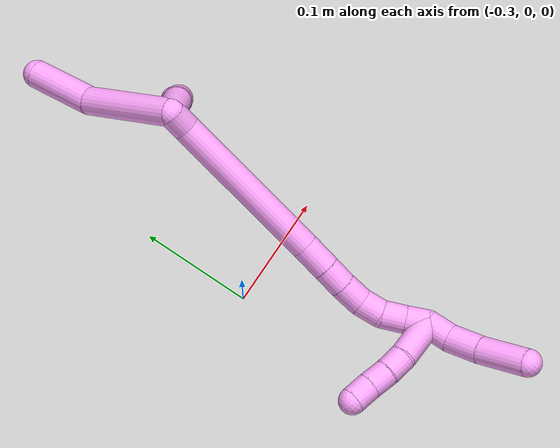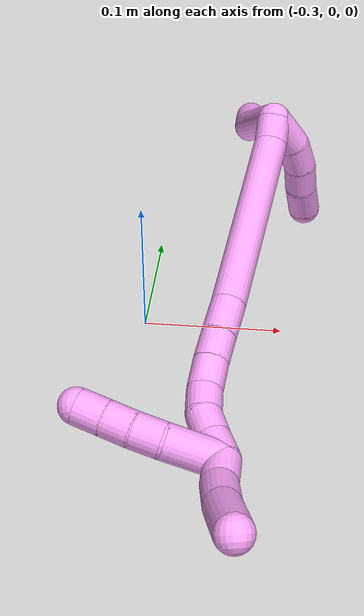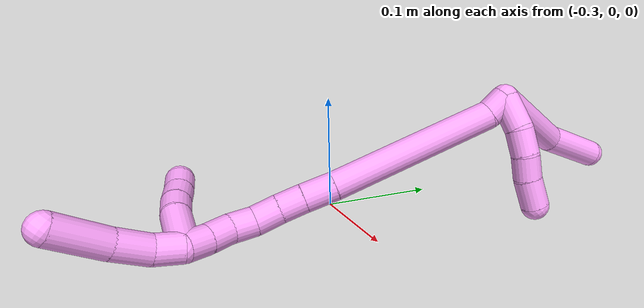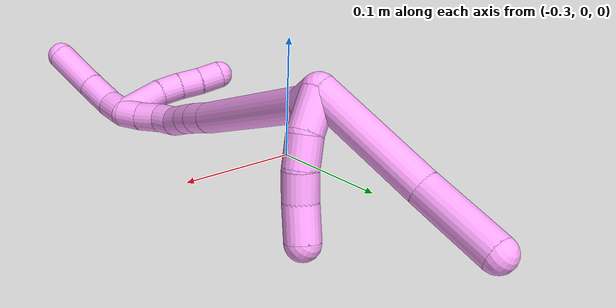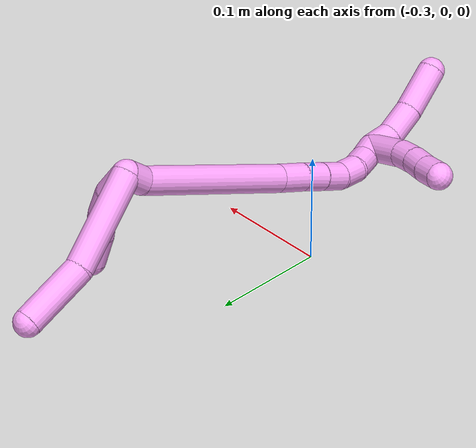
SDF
<sdf version="1.7">
 <world name="default">
  <model name="4">
   <static>0</static>
   <link name="4">
    <collision name="collision-cylinder-e_1_2_8">
     <pose>-0.010547 0.042479 0.009143 -1.35879 -0.238123 0.192638</pose>
     <geometry><cylinder><radius>0.0125</radius><length>0.089428</length></cylinder></geometry>
     <surface>
      <friction><ode><mu>1.16</mu><mu2>1.16</mu2><slip1>0</slip1><slip2>0</slip2></ode></friction>
      <contact><ode><kp>1e+06</kp><kd>1</kd><max_vel>0</max_vel><min_depth>0.001</min_depth></ode></contact>
     </surface>
    </collision>
    <visual name="visual-cylinder-e_1_2_8">
     <pose>-0.010547 0.042479 0.009143 -1.35879 -0.238123 0.192638</pose>
     <geometry><cylinder><radius>0.0125</radius><length>0.089428</length></cylinder></geometry>
     <material><ambient>1 0.65098 0.996078 1</ambient></material>
    </visual>
    <collision name="collision-cylinder-e_2_8_6">
     <pose>-0.021162 0.113003 0.029721 -1.18366 -0.002228 0.001498</pose>
     <geometry><cylinder><radius>0.0125</radius><length>0.060572</length></cylinder></geometry>
     <surface>
      <friction><ode><mu>1.16</mu><mu2>1.16</mu2><slip1>0</slip1><slip2>0</slip2></ode></friction>
      <contact><ode><kp>1e+06</kp><kd>1</kd><max_vel>0</max_vel><min_depth>0.001</min_depth></ode></contact>
     </surface>
    </collision>
    <visual name="visual-cylinder-e_2_8_6">
     <pose>-0.021162 0.113003 0.029721 -1.18366 -0.002228 0.001498</pose>
     <geometry><cylinder><radius>0.0125</radius><length>0.060572</length></cylinder></geometry>
     <material><ambient>1 0.65098 0.996078 1</ambient></material>
    </visual>
    <collision name="collision-cylinder-e_1_2_9">
     <pose>0.006733 0.010503 -0.007835 -2.21176 0.474653 -0.898674</pose>
     <geometry><cylinder><radius>0.0125</radius><length>0.029464</length></cylinder></geometry>
     <surface>
      <friction><ode><mu>1.16</mu><mu2>1.16</mu2><slip1>0</slip1><slip2>0</slip2></ode></friction>
      <contact><ode><kp>1e+06</kp><kd>1</kd><max_vel>0</max_vel><min_depth>0.001</min_depth></ode></contact>
     </surface>
    </collision>
    <visual name="visual-cylinder-e_1_2_9">
     <pose>0.006733 0.010503 -0.007835 -2.21176 0.474653 -0.898674</pose>
     <geometry><cylinder><radius>0.0125</radius><length>0.029464</length></cylinder></geometry>
     <material><ambient>1 0.65098 0.996078 1</ambient></material>
    </visual>
    <collision name="collision-cylinder-e_2_9_10">
     <pose>0.015504 0.029865 -0.022666 -2.23909 0.178663 -0.36554</pose>
     <geometry><cylinder><radius>0.0125</radius><length>0.022942</length></cylinder></geometry>
     <surface>
      <friction><ode><mu>1.16</mu><mu2>1.16</mu2><slip1>0</slip1><slip2>0</slip2></ode></friction>
      <contact><ode><kp>1e+06</kp><kd>1</kd><max_vel>0</max_vel><min_depth>0.001</min_depth></ode></contact>
     </surface>
    </collision>
    <visual name="visual-cylinder-e_2_9_10">
     <pose>0.015504 0.029865 -0.022666 -2.23909 0.178663 -0.36554</pose>
     <geometry><cylinder><radius>0.0125</radius><length>0.022942</length></cylinder></geometry>
     <material><ambient>1 0.65098 0.996078 1</ambient></material>
    </visual>
    <collision name="collision-cylinder-e_3_10_11">
     <pose>0.017402 0.046996 -0.036306 -2.24771 -0.013246 0.027635</pose>
     <geometry><cylinder><radius>0.0125</radius><length>0.02122</length></cylinder></geometry>
     <surface>
      <friction><ode><mu>1.16</mu><mu2>1.16</mu2><slip1>0</slip1><slip2>0</slip2></ode></friction>
      <contact><ode><kp>1e+06</kp><kd>1</kd><max_vel>0</max_vel><min_depth>0.001</min_depth></ode></contact>
     </surface>
    </collision>
    <visual name="visual-cylinder-e_3_10_11">
     <pose>0.017402 0.046996 -0.036306 -2.24771 -0.013246 0.027635</pose>
     <geometry><cylinder><radius>0.0125</radius><length>0.02122</length></cylinder></geometry>
     <material><ambient>1 0.65098 0.996078 1</ambient></material>
    </visual>
    <collision name="collision-cylinder-e_4_11_5">
     <pose>0.017984 0.066585 -0.049677 -2.10687 0.054815 -0.096274</pose>
     <geometry><cylinder><radius>0.0125</radius><length>0.026374</length></cylinder></geometry>
     <surface>
      <friction><ode><mu>1.16</mu><mu2>1.16</mu2><slip1>0</slip1><slip2>0</slip2></ode></friction>
      <contact><ode><kp>1e+06</kp><kd>1</kd><max_vel>0</max_vel><min_depth>0.001</min_depth></ode></contact>
     </surface>
    </collision>
    <visual name="visual-cylinder-e_4_11_5">
     <pose>0.017984 0.066585 -0.049677 -2.10687 0.054815 -0.096274</pose>
     <geometry><cylinder><radius>0.0125</radius><length>0.026374</length></cylinder></geometry>
     <material><ambient>1 0.65098 0.996078 1</ambient></material>
    </visual>
    <collision name="collision-cylinder-e_1_2_12">
     <pose>-0.002005 -0.001072 -0.009877 3.03344 -0.199159 -2.14856</pose>
     <geometry><cylinder><radius>0.0125</radius><length>0.020271</length></cylinder></geometry>
     <surface>
      <friction><ode><mu>1.16</mu><mu2>1.16</mu2><slip1>0</slip1><slip2>0</slip2></ode></friction>
      <contact><ode><kp>1e+06</kp><kd>1</kd><max_vel>0</max_vel><min_depth>0.001</min_depth></ode></contact>
     </surface>
    </collision>
    <visual name="visual-cylinder-e_1_2_12">
     <pose>-0.002005 -0.001072 -0.009877 3.03344 -0.199159 -2.14856</pose>
     <geometry><cylinder><radius>0.0125</radius><length>0.020271</length></cylinder></geometry>
     <material><ambient>1 0.65098 0.996078 1</ambient></material>
    </visual>
    <collision name="collision-cylinder-e_2_12_13">
     <pose>-0.022458 -0.033554 -0.083421 2.68329 -0.254225 -1.00249</pose>
     <geometry><cylinder><radius>0.0125</radius><length>0.1467</length></cylinder></geometry>
     <surface>
      <friction><ode><mu>1.16</mu><mu2>1.16</mu2><slip1>0</slip1><slip2>0</slip2></ode></friction>
      <contact><ode><kp>1e+06</kp><kd>1</kd><max_vel>0</max_vel><min_depth>0.001</min_depth></ode></contact>
     </surface>
    </collision>
    <visual name="visual-cylinder-e_2_12_13">
     <pose>-0.022458 -0.033554 -0.083421 2.68329 -0.254225 -1.00249</pose>
     <geometry><cylinder><radius>0.0125</radius><length>0.1467</length></cylinder></geometry>
     <material><ambient>1 0.65098 0.996078 1</ambient></material>
    </visual>
    <collision name="collision-cylinder-e_3_13_14">
     <pose>-0.044604 -0.071267 -0.158394 2.63299 -0.278345 -0.988575</pose>
     <geometry><cylinder><radius>0.0125</radius><length>0.026928</length></cylinder></geometry>
     <surface>
      <friction><ode><mu>1.16</mu><mu2>1.16</mu2><slip1>0</slip1><slip2>0</slip2></ode></friction>
      <contact><ode><kp>1e+06</kp><kd>1</kd><max_vel>0</max_vel><min_depth>0.001</min_depth></ode></contact>
     </surface>
    </collision>
    <visual name="visual-cylinder-e_3_13_14">
     <pose>-0.044604 -0.071267 -0.158394 2.63299 -0.278345 -0.988575</pose>
     <geometry><cylinder><radius>0.0125</radius><length>0.026928</length></cylinder></geometry>
     <material><ambient>1 0.65098 0.996078 1</ambient></material>
    </visual>
    <collision name="collision-cylinder-e_4_14_15">
     <pose>-0.051195 -0.082257 -0.178837 2.66762 -0.274507 -1.03896</pose>
     <geometry><cylinder><radius>0.0125</radius><length>0.021335</length></cylinder></geometry>
     <surface>
      <friction><ode><mu>1.16</mu><mu2>1.16</mu2><slip1>0</slip1><slip2>0</slip2></ode></friction>
      <contact><ode><kp>1e+06</kp><kd>1</kd><max_vel>0</max_vel><min_depth>0.001</min_depth></ode></contact>
     </surface>
    </collision>
    <visual name="visual-cylinder-e_4_14_15">
     <pose>-0.051195 -0.082257 -0.178837 2.66762 -0.274507 -1.03896</pose>
     <geometry><cylinder><radius>0.0125</radius><length>0.021335</length></cylinder></geometry>
     <material><ambient>1 0.65098 0.996078 1</ambient></material>
    </visual>
    <collision name="collision-cylinder-e_5_15_16">
     <pose>-0.056475 -0.091663 -0.197784 2.69326 -0.215918 -0.887483</pose>
     <geometry><cylinder><radius>0.0125</radius><length>0.022291</length></cylinder></geometry>
     <surface>
      <friction><ode><mu>1.16</mu><mu2>1.16</mu2><slip1>0</slip1><slip2>0</slip2></ode></friction>
      <contact><ode><kp>1e+06</kp><kd>1</kd><max_vel>0</max_vel><min_depth>0.001</min_depth></ode></contact>
     </surface>
    </collision>
    <visual name="visual-cylinder-e_5_15_16">
     <pose>-0.056475 -0.091663 -0.197784 2.69326 -0.215918 -0.887483</pose>
     <geometry><cylinder><radius>0.0125</radius><length>0.022291</length></cylinder></geometry>
     <material><ambient>1 0.65098 0.996078 1</ambient></material>
    </visual>
    <collision name="collision-cylinder-e_6_16_17">
     <pose>-0.059195 -0.102937 -0.215665 2.4594 -0.031939 -0.089923</pose>
     <geometry><cylinder><radius>0.0125</radius><length>0.020805</length></cylinder></geometry>
     <surface>
      <friction><ode><mu>1.16</mu><mu2>1.16</mu2><slip1>0</slip1><slip2>0</slip2></ode></friction>
      <contact><ode><kp>1e+06</kp><kd>1</kd><max_vel>0</max_vel><min_depth>0.001</min_depth></ode></contact>
     </surface>
    </collision>
    <visual name="visual-cylinder-e_6_16_17">
     <pose>-0.059195 -0.102937 -0.215665 2.4594 -0.031939 -0.089923</pose>
     <geometry><cylinder><radius>0.0125</radius><length>0.020805</length></cylinder></geometry>
     <material><ambient>1 0.65098 0.996078 1</ambient></material>
    </visual>
    <collision name="collision-cylinder-e_7_17_18">
     <pose>-0.056542 -0.115781 -0.231871 2.48353 0.282532 0.78931</pose>
     <geometry><cylinder><radius>0.0125</radius><length>0.021414</length></cylinder></geometry>
     <surface>
      <friction><ode><mu>1.16</mu><mu2>1.16</mu2><slip1>0</slip1><slip2>0</slip2></ode></friction>
      <contact><ode><kp>1e+06</kp><kd>1</kd><max_vel>0</max_vel><min_depth>0.001</min_depth></ode></contact>
     </surface>
    </collision>
    <visual name="visual-cylinder-e_7_17_18">
     <pose>-0.056542 -0.115781 -0.231871 2.48353 0.282532 0.78931</pose>
     <geometry><cylinder><radius>0.0125</radius><length>0.021414</length></cylinder></geometry>
     <material><ambient>1 0.65098 0.996078 1</ambient></material>
    </visual>
    <collision name="collision-cylinder-e_8_18_1">
     <pose>-0.050434 -0.128757 -0.246942 2.37449 0.313504 0.746589</pose>
     <geometry><cylinder><radius>0.0125</radius><length>0.020257</length></cylinder></geometry>
     <surface>
      <friction><ode><mu>1.16</mu><mu2>1.16</mu2><slip1>0</slip1><slip2>0</slip2></ode></friction>
      <contact><ode><kp>1e+06</kp><kd>1</kd><max_vel>0</max_vel><min_depth>0.001</min_depth></ode></contact>
     </surface>
    </collision>
    <visual name="visual-cylinder-e_8_18_1">
     <pose>-0.050434 -0.128757 -0.246942 2.37449 0.313504 0.746589</pose>
     <geometry><cylinder><radius>0.0125</radius><length>0.020257</length></cylinder></geometry>
     <material><ambient>1 0.65098 0.996078 1</ambient></material>
    </visual>
    <collision name="collision-cylinder-e_1_1_19">
     <pose>-0.048177 -0.144577 -0.260949 2.22954 -0.074947 -0.152569</pose>
     <geometry><cylinder><radius>0.0125</radius><length>0.023167</length></cylinder></geometry>
     <surface>
      <friction><ode><mu>1.16</mu><mu2>1.16</mu2><slip1>0</slip1><slip2>0</slip2></ode></friction>
      <contact><ode><kp>1e+06</kp><kd>1</kd><max_vel>0</max_vel><min_depth>0.001</min_depth></ode></contact>
     </surface>
    </collision>
    <visual name="visual-cylinder-e_1_1_19">
     <pose>-0.048177 -0.144577 -0.260949 2.22954 -0.074947 -0.152569</pose>
     <geometry><cylinder><radius>0.0125</radius><length>0.023167</length></cylinder></geometry>
     <material><ambient>1 0.65098 0.996078 1</ambient></material>
    </visual>
    <collision name="collision-cylinder-e_2_19_20">
     <pose>-0.047426 -0.167853 -0.273739 1.95515 0.10574 0.156655</pose>
     <geometry><cylinder><radius>0.0125</radius><length>0.03068</length></cylinder></geometry>
     <surface>
      <friction><ode><mu>1.16</mu><mu2>1.16</mu2><slip1>0</slip1><slip2>0</slip2></ode></friction>
      <contact><ode><kp>1e+06</kp><kd>1</kd><max_vel>0</max_vel><min_depth>0.001</min_depth></ode></contact>
     </surface>
    </collision>
    <visual name="visual-cylinder-e_2_19_20">
     <pose>-0.047426 -0.167853 -0.273739 1.95515 0.10574 0.156655</pose>
     <geometry><cylinder><radius>0.0125</radius><length>0.03068</length></cylinder></geometry>
     <material><ambient>1 0.65098 0.996078 1</ambient></material>
    </visual>
    <collision name="collision-cylinder-e_3_20_4">
     <pose>-0.041552 -0.203759 -0.285839 1.85595 0.185437 0.247047</pose>
     <geometry><cylinder><radius>0.0125</radius><length>0.046153</length></cylinder></geometry>
     <surface>
      <friction><ode><mu>1.16</mu><mu2>1.16</mu2><slip1>0</slip1><slip2>0</slip2></ode></friction>
      <contact><ode><kp>1e+06</kp><kd>1</kd><max_vel>0</max_vel><min_depth>0.001</min_depth></ode></contact>
     </surface>
    </collision>
    <visual name="visual-cylinder-e_3_20_4">
     <pose>-0.041552 -0.203759 -0.285839 1.85595 0.185437 0.247047</pose>
     <geometry><cylinder><radius>0.0125</radius><length>0.046153</length></cylinder></geometry>
     <material><ambient>1 0.65098 0.996078 1</ambient></material>
    </visual>
    <collision name="collision-cylinder-e_1_1_21">
     <pose>-0.065428 -0.139294 -0.246438 0.477522 -1.1377 -0.308763</pose>
     <geometry><cylinder><radius>0.0125</radius><length>0.039923</length></cylinder></geometry>
     <surface>
      <friction><ode><mu>1.16</mu><mu2>1.16</mu2><slip1>0</slip1><slip2>0</slip2></ode></friction>
      <contact><ode><kp>1e+06</kp><kd>1</kd><max_vel>0</max_vel><min_depth>0.001</min_depth></ode></contact>
     </surface>
    </collision>
    <visual name="visual-cylinder-e_1_1_21">
     <pose>-0.065428 -0.139294 -0.246438 0.477522 -1.1377 -0.308763</pose>
     <geometry><cylinder><radius>0.0125</radius><length>0.039923</length></cylinder></geometry>
     <material><ambient>1 0.65098 0.996078 1</ambient></material>
    </visual>
    <collision name="collision-cylinder-e_2_21_22">
     <pose>-0.092734 -0.143195 -0.235 0.012883 -1.16035 -0.008444</pose>
     <geometry><cylinder><radius>0.0125</radius><length>0.020039</length></cylinder></geometry>
     <surface>
      <friction><ode><mu>1.16</mu><mu2>1.16</mu2><slip1>0</slip1><slip2>0</slip2></ode></friction>
      <contact><ode><kp>1e+06</kp><kd>1</kd><max_vel>0</max_vel><min_depth>0.001</min_depth></ode></contact>
     </surface>
    </collision>
    <visual name="visual-cylinder-e_2_21_22">
     <pose>-0.092734 -0.143195 -0.235 0.012883 -1.16035 -0.008444</pose>
     <geometry><cylinder><radius>0.0125</radius><length>0.020039</length></cylinder></geometry>
     <material><ambient>1 0.65098 0.996078 1</ambient></material>
    </visual>
    <collision name="collision-cylinder-e_3_22_23">
     <pose>-0.11089 -0.142236 -0.226686 -0.229946 -1.1117 0.143227</pose>
     <geometry><cylinder><radius>0.0125</radius><length>0.020008</length></cylinder></geometry>
     <surface>
      <friction><ode><mu>1.16</mu><mu2>1.16</mu2><slip1>0</slip1><slip2>0</slip2></ode></friction>
      <contact><ode><kp>1e+06</kp><kd>1</kd><max_vel>0</max_vel><min_depth>0.001</min_depth></ode></contact>
     </surface>
    </collision>
    <visual name="visual-cylinder-e_3_22_23">
     <pose>-0.11089 -0.142236 -0.226686 -0.229946 -1.1117 0.143227</pose>
     <geometry><cylinder><radius>0.0125</radius><length>0.020008</length></cylinder></geometry>
     <material><ambient>1 0.65098 0.996078 1</ambient></material>
    </visual>
    <collision name="collision-cylinder-e_4_23_3">
     <pose>-0.12886 -0.141087 -0.217982 -0.031592 -1.11708 0.019743</pose>
     <geometry><cylinder><radius>0.0125</radius><length>0.02003</length></cylinder></geometry>
     <surface>
      <friction><ode><mu>1.16</mu><mu2>1.16</mu2><slip1>0</slip1><slip2>0</slip2></ode></friction>
      <contact><ode><kp>1e+06</kp><kd>1</kd><max_vel>0</max_vel><min_depth>0.001</min_depth></ode></contact>
     </surface>
    </collision>
    <visual name="visual-cylinder-e_4_23_3">
     <pose>-0.12886 -0.141087 -0.217982 -0.031592 -1.11708 0.019743</pose>
     <geometry><cylinder><radius>0.0125</radius><length>0.02003</length></cylinder></geometry>
     <material><ambient>1 0.65098 0.996078 1</ambient></material>
    </visual>
    <collision name="collision-sphere-3">
     <pose>-0.137861 -0.140948 -0.213594 0 -0 0</pose>
     <geometry><sphere><radius>0.0125</radius></sphere></geometry>
     <surface>
      <friction><ode><mu>1.16</mu><mu2>1.16</mu2><slip1>0</slip1><slip2>0</slip2></ode></friction>
      <contact><ode><kp>1e+06</kp><kd>1</kd><max_vel>0</max_vel><min_depth>0.001</min_depth></ode></contact>
     </surface>
    </collision>
    <visual name="visual-sphere-3">
     <pose>-0.137861 -0.140948 -0.213594 0 -0 0</pose>
     <geometry><sphere><radius>0.0125</radius></sphere></geometry>
     <material><ambient>1 0.65098 0.996078 1</ambient></material>
    </visual>
    <collision name="collision-sphere-23">
     <pose>-0.119858 -0.141226 -0.222369 0 -0 0</pose>
     <geometry><sphere><radius>0.0125</radius></sphere></geometry>
     <surface>
      <friction><ode><mu>1.16</mu><mu2>1.16</mu2><slip1>0</slip1><slip2>0</slip2></ode></friction>
      <contact><ode><kp>1e+06</kp><kd>1</kd><max_vel>0</max_vel><min_depth>0.001</min_depth></ode></contact>
     </surface>
    </collision>
    <visual name="visual-sphere-23">
     <pose>-0.119858 -0.141226 -0.222369 0 -0 0</pose>
     <geometry><sphere><radius>0.0125</radius></sphere></geometry>
     <material><ambient>1 0.65098 0.996078 1</ambient></material>
    </visual>
    <collision name="collision-sphere-22">
     <pose>-0.101921 -0.143247 -0.231002 0 -0 0</pose>
     <geometry><sphere><radius>0.0125</radius></sphere></geometry>
     <surface>
      <friction><ode><mu>1.16</mu><mu2>1.16</mu2><slip1>0</slip1><slip2>0</slip2></ode></friction>
      <contact><ode><kp>1e+06</kp><kd>1</kd><max_vel>0</max_vel><min_depth>0.001</min_depth></ode></contact>
     </surface>
    </collision>
    <visual name="visual-sphere-22">
     <pose>-0.101921 -0.143247 -0.231002 0 -0 0</pose>
     <geometry><sphere><radius>0.0125</radius></sphere></geometry>
     <material><ambient>1 0.65098 0.996078 1</ambient></material>
    </visual>
    <collision name="collision-sphere-21">
     <pose>-0.083547 -0.143144 -0.238998 0 -0 0</pose>
     <geometry><sphere><radius>0.0125</radius></sphere></geometry>
     <surface>
      <friction><ode><mu>1.16</mu><mu2>1.16</mu2><slip1>0</slip1><slip2>0</slip2></ode></friction>
      <contact><ode><kp>1e+06</kp><kd>1</kd><max_vel>0</max_vel><min_depth>0.001</min_depth></ode></contact>
     </surface>
    </collision>
    <visual name="visual-sphere-21">
     <pose>-0.083547 -0.143144 -0.238998 0 -0 0</pose>
     <geometry><sphere><radius>0.0125</radius></sphere></geometry>
     <material><ambient>1 0.65098 0.996078 1</ambient></material>
    </visual>
    <collision name="collision-sphere-4">
     <pose>-0.037297 -0.225524 -0.292219 0 -0 0</pose>
     <geometry><sphere><radius>0.0125</radius></sphere></geometry>
     <surface>
      <friction><ode><mu>1.16</mu><mu2>1.16</mu2><slip1>0</slip1><slip2>0</slip2></ode></friction>
      <contact><ode><kp>1e+06</kp><kd>1</kd><max_vel>0</max_vel><min_depth>0.001</min_depth></ode></contact>
     </surface>
    </collision>
    <visual name="visual-sphere-4">
     <pose>-0.037297 -0.225524 -0.292219 0 -0 0</pose>
     <geometry><sphere><radius>0.0125</radius></sphere></geometry>
     <material><ambient>1 0.65098 0.996078 1</ambient></material>
    </visual>
    <collision name="collision-sphere-20">
     <pose>-0.045807 -0.181994 -0.279459 0 -0 0</pose>
     <geometry><sphere><radius>0.0125</radius></sphere></geometry>
     <surface>
      <friction><ode><mu>1.16</mu><mu2>1.16</mu2><slip1>0</slip1><slip2>0</slip2></ode></friction>
      <contact><ode><kp>1e+06</kp><kd>1</kd><max_vel>0</max_vel><min_depth>0.001</min_depth></ode></contact>
     </surface>
    </collision>
    <visual name="visual-sphere-20">
     <pose>-0.045807 -0.181994 -0.279459 0 -0 0</pose>
     <geometry><sphere><radius>0.0125</radius></sphere></geometry>
     <material><ambient>1 0.65098 0.996078 1</ambient></material>
    </visual>
    <collision name="collision-sphere-11">
     <pose>0.017262 0.055266 -0.042952 0 -0 0</pose>
     <geometry><sphere><radius>0.0125</radius></sphere></geometry>
     <surface>
      <friction><ode><mu>1.16</mu><mu2>1.16</mu2><slip1>0</slip1><slip2>0</slip2></ode></friction>
      <contact><ode><kp>1e+06</kp><kd>1</kd><max_vel>0</max_vel><min_depth>0.001</min_depth></ode></contact>
     </surface>
    </collision>
    <visual name="visual-sphere-11">
     <pose>0.017262 0.055266 -0.042952 0 -0 0</pose>
     <geometry><sphere><radius>0.0125</radius></sphere></geometry>
     <material><ambient>1 0.65098 0.996078 1</ambient></material>
    </visual>
    <collision name="collision-sphere-10">
     <pose>0.017543 0.038726 -0.029661 0 -0 0</pose>
     <geometry><sphere><radius>0.0125</radius></sphere></geometry>
     <surface>
      <friction><ode><mu>1.16</mu><mu2>1.16</mu2><slip1>0</slip1><slip2>0</slip2></ode></friction>
      <contact><ode><kp>1e+06</kp><kd>1</kd><max_vel>0</max_vel><min_depth>0.001</min_depth></ode></contact>
     </surface>
    </collision>
    <visual name="visual-sphere-10">
     <pose>0.017543 0.038726 -0.029661 0 -0 0</pose>
     <geometry><sphere><radius>0.0125</radius></sphere></geometry>
     <material><ambient>1 0.65098 0.996078 1</ambient></material>
    </visual>
    <collision name="collision-sphere-6">
     <pose>-0.021229 0.141048 0.041155 0 -0 0</pose>
     <geometry><sphere><radius>0.0125</radius></sphere></geometry>
     <surface>
      <friction><ode><mu>1.16</mu><mu2>1.16</mu2><slip1>0</slip1><slip2>0</slip2></ode></friction>
      <contact><ode><kp>1e+06</kp><kd>1</kd><max_vel>0</max_vel><min_depth>0.001</min_depth></ode></contact>
     </surface>
    </collision>
    <visual name="visual-sphere-6">
     <pose>-0.021229 0.141048 0.041155 0 -0 0</pose>
     <geometry><sphere><radius>0.0125</radius></sphere></geometry>
     <material><ambient>1 0.65098 0.996078 1</ambient></material>
    </visual>
    <collision name="collision-sphere-9">
     <pose>0.013466 0.021005 -0.015671 0 -0 0</pose>
     <geometry><sphere><radius>0.0125</radius></sphere></geometry>
     <surface>
      <friction><ode><mu>1.16</mu><mu2>1.16</mu2><slip1>0</slip1><slip2>0</slip2></ode></friction>
      <contact><ode><kp>1e+06</kp><kd>1</kd><max_vel>0</max_vel><min_depth>0.001</min_depth></ode></contact>
     </surface>
    </collision>
    <visual name="visual-sphere-9">
     <pose>0.013466 0.021005 -0.015671 0 -0 0</pose>
     <geometry><sphere><radius>0.0125</radius></sphere></geometry>
     <material><ambient>1 0.65098 0.996078 1</ambient></material>
    </visual>
    <collision name="collision-sphere-2">
     <geometry><sphere><radius>0.0125</radius></sphere></geometry>
     <surface>
      <friction><ode><mu>1.16</mu><mu2>1.16</mu2><slip1>0</slip1><slip2>0</slip2></ode></friction>
      <contact><ode><kp>1e+06</kp><kd>1</kd><max_vel>0</max_vel><min_depth>0.001</min_depth></ode></contact>
     </surface>
    </collision>
    <visual name="visual-sphere-2">
     <geometry><sphere><radius>0.0125</radius></sphere></geometry>
     <material><ambient>1 0.65098 0.996078 1</ambient></material>
    </visual>
    <collision name="collision-sphere-19">
     <pose>-0.049045 -0.153711 -0.268019 0 -0 0</pose>
     <geometry><sphere><radius>0.0125</radius></sphere></geometry>
     <surface>
      <friction><ode><mu>1.16</mu><mu2>1.16</mu2><slip1>0</slip1><slip2>0</slip2></ode></friction>
      <contact><ode><kp>1e+06</kp><kd>1</kd><max_vel>0</max_vel><min_depth>0.001</min_depth></ode></contact>
     </surface>
    </collision>
    <visual name="visual-sphere-19">
     <pose>-0.049045 -0.153711 -0.268019 0 -0 0</pose>
     <geometry><sphere><radius>0.0125</radius></sphere></geometry>
     <material><ambient>1 0.65098 0.996078 1</ambient></material>
    </visual>
    <collision name="collision-sphere-8">
     <pose>-0.021094 0.084958 0.018287 0 -0 0</pose>
     <geometry><sphere><radius>0.0125</radius></sphere></geometry>
     <surface>
      <friction><ode><mu>1.16</mu><mu2>1.16</mu2><slip1>0</slip1><slip2>0</slip2></ode></friction>
      <contact><ode><kp>1e+06</kp><kd>1</kd><max_vel>0</max_vel><min_depth>0.001</min_depth></ode></contact>
     </surface>
    </collision>
    <visual name="visual-sphere-8">
     <pose>-0.021094 0.084958 0.018287 0 -0 0</pose>
     <geometry><sphere><radius>0.0125</radius></sphere></geometry>
     <material><ambient>1 0.65098 0.996078 1</ambient></material>
    </visual>
    <collision name="collision-sphere-5">
     <pose>0.018707 0.077905 -0.056402 0 -0 0</pose>
     <geometry><sphere><radius>0.0125</radius></sphere></geometry>
     <surface>
      <friction><ode><mu>1.16</mu><mu2>1.16</mu2><slip1>0</slip1><slip2>0</slip2></ode></friction>
      <contact><ode><kp>1e+06</kp><kd>1</kd><max_vel>0</max_vel><min_depth>0.001</min_depth></ode></contact>
     </surface>
    </collision>
    <visual name="visual-sphere-5">
     <pose>0.018707 0.077905 -0.056402 0 -0 0</pose>
     <geometry><sphere><radius>0.0125</radius></sphere></geometry>
     <material><ambient>1 0.65098 0.996078 1</ambient></material>
    </visual>
    <collision name="collision-sphere-12">
     <pose>-0.004011 -0.002145 -0.019754 0 -0 0</pose>
     <geometry><sphere><radius>0.0125</radius></sphere></geometry>
     <surface>
      <friction><ode><mu>1.16</mu><mu2>1.16</mu2><slip1>0</slip1><slip2>0</slip2></ode></friction>
      <contact><ode><kp>1e+06</kp><kd>1</kd><max_vel>0</max_vel><min_depth>0.001</min_depth></ode></contact>
     </surface>
    </collision>
    <visual name="visual-sphere-12">
     <pose>-0.004011 -0.002145 -0.019754 0 -0 0</pose>
     <geometry><sphere><radius>0.0125</radius></sphere></geometry>
     <material><ambient>1 0.65098 0.996078 1</ambient></material>
    </visual>
    <collision name="collision-sphere-13">
     <pose>-0.040905 -0.064963 -0.147087 0 -0 0</pose>
     <geometry><sphere><radius>0.0125</radius></sphere></geometry>
     <surface>
      <friction><ode><mu>1.16</mu><mu2>1.16</mu2><slip1>0</slip1><slip2>0</slip2></ode></friction>
      <contact><ode><kp>1e+06</kp><kd>1</kd><max_vel>0</max_vel><min_depth>0.001</min_depth></ode></contact>
     </surface>
    </collision>
    <visual name="visual-sphere-13">
     <pose>-0.040905 -0.064963 -0.147087 0 -0 0</pose>
     <geometry><sphere><radius>0.0125</radius></sphere></geometry>
     <material><ambient>1 0.65098 0.996078 1</ambient></material>
    </visual>
    <collision name="collision-sphere-14">
     <pose>-0.048304 -0.077571 -0.169701 0 -0 0</pose>
     <geometry><sphere><radius>0.0125</radius></sphere></geometry>
     <surface>
      <friction><ode><mu>1.16</mu><mu2>1.16</mu2><slip1>0</slip1><slip2>0</slip2></ode></friction>
      <contact><ode><kp>1e+06</kp><kd>1</kd><max_vel>0</max_vel><min_depth>0.001</min_depth></ode></contact>
     </surface>
    </collision>
    <visual name="visual-sphere-14">
     <pose>-0.048304 -0.077571 -0.169701 0 -0 0</pose>
     <geometry><sphere><radius>0.0125</radius></sphere></geometry>
     <material><ambient>1 0.65098 0.996078 1</ambient></material>
    </visual>
    <collision name="collision-sphere-15">
     <pose>-0.054087 -0.086944 -0.187974 0 -0 0</pose>
     <geometry><sphere><radius>0.0125</radius></sphere></geometry>
     <surface>
      <friction><ode><mu>1.16</mu><mu2>1.16</mu2><slip1>0</slip1><slip2>0</slip2></ode></friction>
      <contact><ode><kp>1e+06</kp><kd>1</kd><max_vel>0</max_vel><min_depth>0.001</min_depth></ode></contact>
     </surface>
    </collision>
    <visual name="visual-sphere-15">
     <pose>-0.054087 -0.086944 -0.187974 0 -0 0</pose>
     <geometry><sphere><radius>0.0125</radius></sphere></geometry>
     <material><ambient>1 0.65098 0.996078 1</ambient></material>
    </visual>
    <collision name="collision-sphere-16">
     <pose>-0.058863 -0.096382 -0.207595 0 -0 0</pose>
     <geometry><sphere><radius>0.0125</radius></sphere></geometry>
     <surface>
      <friction><ode><mu>1.16</mu><mu2>1.16</mu2><slip1>0</slip1><slip2>0</slip2></ode></friction>
      <contact><ode><kp>1e+06</kp><kd>1</kd><max_vel>0</max_vel><min_depth>0.001</min_depth></ode></contact>
     </surface>
    </collision>
    <visual name="visual-sphere-16">
     <pose>-0.058863 -0.096382 -0.207595 0 -0 0</pose>
     <geometry><sphere><radius>0.0125</radius></sphere></geometry>
     <material><ambient>1 0.65098 0.996078 1</ambient></material>
    </visual>
    <collision name="collision-sphere-17">
     <pose>-0.059527 -0.109493 -0.223735 0 -0 0</pose>
     <geometry><sphere><radius>0.0125</radius></sphere></geometry>
     <surface>
      <friction><ode><mu>1.16</mu><mu2>1.16</mu2><slip1>0</slip1><slip2>0</slip2></ode></friction>
      <contact><ode><kp>1e+06</kp><kd>1</kd><max_vel>0</max_vel><min_depth>0.001</min_depth></ode></contact>
     </surface>
    </collision>
    <visual name="visual-sphere-17">
     <pose>-0.059527 -0.109493 -0.223735 0 -0 0</pose>
     <geometry><sphere><radius>0.0125</radius></sphere></geometry>
     <material><ambient>1 0.65098 0.996078 1</ambient></material>
    </visual>
    <collision name="collision-sphere-18">
     <pose>-0.053557 -0.12207 -0.240006 0 -0 0</pose>
     <geometry><sphere><radius>0.0125</radius></sphere></geometry>
     <surface>
      <friction><ode><mu>1.16</mu><mu2>1.16</mu2><slip1>0</slip1><slip2>0</slip2></ode></friction>
      <contact><ode><kp>1e+06</kp><kd>1</kd><max_vel>0</max_vel><min_depth>0.001</min_depth></ode></contact>
     </surface>
    </collision>
    <visual name="visual-sphere-18">
     <pose>-0.053557 -0.12207 -0.240006 0 -0 0</pose>
     <geometry><sphere><radius>0.0125</radius></sphere></geometry>
     <material><ambient>1 0.65098 0.996078 1</ambient></material>
    </visual>
    <collision name="collision-sphere-1">
     <pose>-0.04731 -0.135444 -0.253878 0 -0 0</pose>
     <geometry><sphere><radius>0.0125</radius></sphere></geometry>
     <surface>
      <friction><ode><mu>1.16</mu><mu2>1.16</mu2><slip1>0</slip1><slip2>0</slip2></ode></friction>
      <contact><ode><kp>1e+06</kp><kd>1</kd><max_vel>0</max_vel><min_depth>0.001</min_depth></ode></contact>
     </surface>
    </collision>
    <visual name="visual-sphere-1">
     <pose>-0.04731 -0.135444 -0.253878 0 -0 0</pose>
     <geometry><sphere><radius>0.0125</radius></sphere></geometry>
     <material><ambient>1 0.65098 0.996078 1</ambient></material>
    </visual>
    <inertial>
     <pose>-0.03325 -0.047339 -0.120908 0 -0 0</pose>
     <mass>0.75</mass>
     <inertia>
      <ixx>3.2e-05</ixx>
      <ixy>0</ixy>
      <ixz>0</ixz>
      <iyy>-0.000296</iyy>
      <iyz>0</iyz>
      <izz>0.000119</izz>
     </inertia>
    </inertial>
   </link>
   <pose>-0.214792 0.129681 0.103825 -0.770007 -0.101936 0.081943</pose>
  </model>
 </world>
</sdf>
